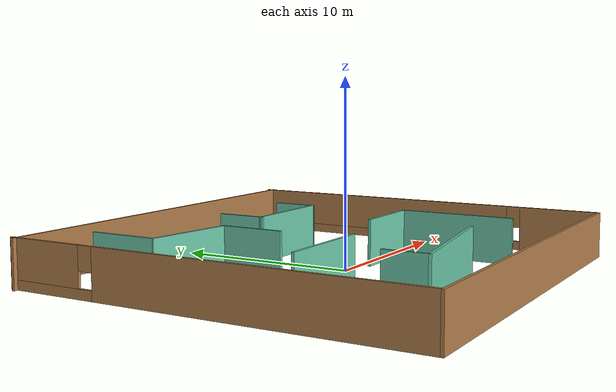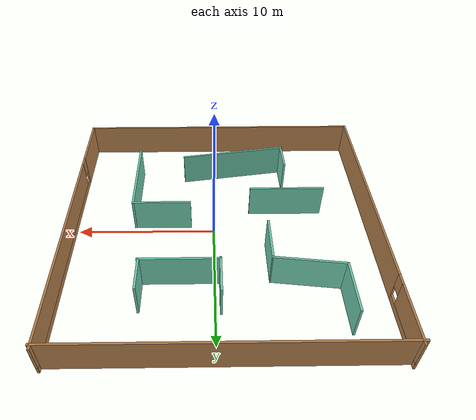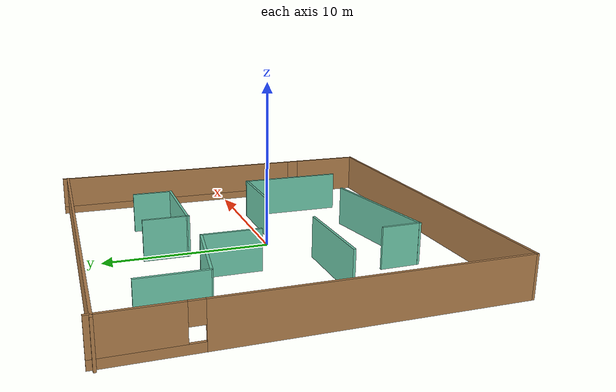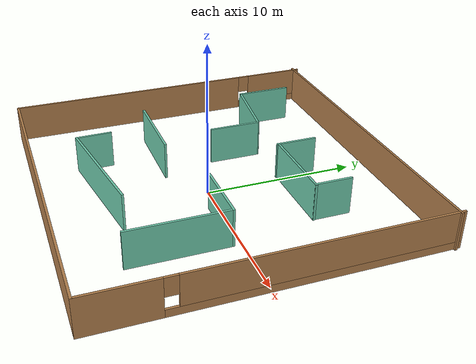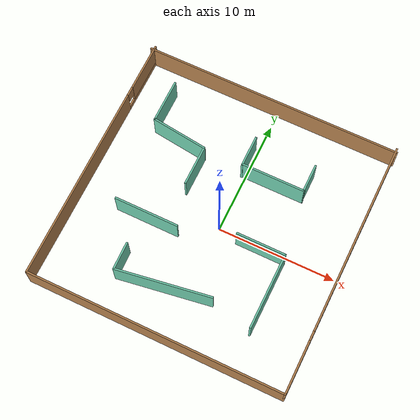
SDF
<?xml version='1.0'?>
<sdf version='1.7'>
  <model name='building_final'>
    <pose>-0.645974 0.589478 0 0 -0 0</pose>
    <link name='Wall_33'>
      <collision name='Wall_33_Collision'>
        <geometry>
          <box>
            <size>21.908 0.15 2.5</size>
          </box>
        </geometry>
        <pose>0 0 1.25 0 -0 0</pose>
      </collision>
      <visual name='Wall_33_Visual'>
        <pose>0 0 1.25 0 -0 0</pose>
        <geometry>
          <box>
            <size>21.908 0.15 2.5</size>
          </box>
        </geometry>
        <material>
          <script>
            <uri>file://media/materials/scripts/gazebo.material</uri>
            <name>Gazebo/Wood</name>
          </script>
          <ambient>1 1 1 1</ambient>
        </material>
        <meta>
          <layer>0</layer>
        </meta>
      </visual>
      <pose>0.052152 -10.925 0 0 -0 0</pose>
    </link>
    <link name='Wall_34'>
      <pose>10.9312 -0 0 0 -0 1.5708</pose>
      <visual name='Wall_34_Visual_0'>
        <pose>-8.72292 0 1.25 0 -0 0</pose>
        <geometry>
          <box>
            <size>4.55416 0.15 2.5</size>
          </box>
        </geometry>
        <material>
          <script>
            <uri>file://media/materials/scripts/gazebo.material</uri>
            <name>Gazebo/Wood</name>
          </script>
          <ambient>1 1 1 1</ambient>
        </material>
        <meta>
          <layer>0</layer>
        </meta>
      </visual>
      <collision name='Wall_34_Collision_0'>
        <geometry>
          <box>
            <size>4.55416 0.15 2.5</size>
          </box>
        </geometry>
        <pose>-8.72292 0 1.25 0 -0 0</pose>
      </collision>
      <visual name='Wall_34_Visual_1'>
        <pose>2.27708 0 0.25 0 -0 0</pose>
        <geometry>
          <box>
            <size>17.4458 0.15 0.5</size>
          </box>
        </geometry>
        <material>
          <script>
            <uri>file://media/materials/scripts/gazebo.material</uri>
            <name>Gazebo/Wood</name>
          </script>
          <ambient>1 1 1 1</ambient>
        </material>
        <meta>
          <layer>0</layer>
        </meta>
      </visual>
      <collision name='Wall_34_Collision_1'>
        <geometry>
          <box>
            <size>17.4458 0.15 0.5</size>
          </box>
        </geometry>
        <pose>2.27708 0 0.25 0 -0 0</pose>
      </collision>
      <visual name='Wall_34_Visual_2'>
        <pose>2.67708 0 1.5 0 -0 0</pose>
        <geometry>
          <box>
            <size>16.6458 0.15 2</size>
          </box>
        </geometry>
        <material>
          <script>
            <uri>file://media/materials/scripts/gazebo.material</uri>
            <name>Gazebo/Wood</name>
          </script>
          <ambient>1 1 1 1</ambient>
        </material>
        <meta>
          <layer>0</layer>
        </meta>
      </visual>
      <collision name='Wall_34_Collision_2'>
        <geometry>
          <box>
            <size>16.6458 0.15 2</size>
          </box>
        </geometry>
        <pose>2.67708 0 1.5 0 -0 0</pose>
      </collision>
      <visual name='Wall_34_Visual_3'>
        <pose>-6.04584 0 1.9 0 -0 0</pose>
        <geometry>
          <box>
            <size>0.8 0.15 1.2</size>
          </box>
        </geometry>
        <material>
          <script>
            <uri>file://media/materials/scripts/gazebo.material</uri>
            <name>Gazebo/Wood</name>
          </script>
          <ambient>1 1 1 1</ambient>
        </material>
        <meta>
          <layer>0</layer>
        </meta>
      </visual>
      <collision name='Wall_34_Collision_3'>
        <geometry>
          <box>
            <size>0.8 0.15 1.2</size>
          </box>
        </geometry>
        <pose>-6.04584 0 1.9 0 -0 0</pose>
      </collision>
    </link>
    <link name='Wall_36'>
      <pose>-10.8268 -0 0 0 -0 1.5708</pose>
      <visual name='Wall_36_Visual_0'>
        <pose>-2.54968 0 1.25 0 -0 0</pose>
        <geometry>
          <box>
            <size>16.9006 0.15 2.5</size>
          </box>
        </geometry>
        <material>
          <script>
            <uri>file://media/materials/scripts/gazebo.material</uri>
            <name>Gazebo/Wood</name>
          </script>
          <ambient>1 1 1 1</ambient>
        </material>
        <meta>
          <layer>0</layer>
        </meta>
      </visual>
      <collision name='Wall_36_Collision_0'>
        <geometry>
          <box>
            <size>16.9006 0.15 2.5</size>
          </box>
        </geometry>
        <pose>-2.54968 0 1.25 0 -0 0</pose>
      </collision>
      <visual name='Wall_36_Visual_1'>
        <pose>8.45032 0 0.25 0 -0 0</pose>
        <geometry>
          <box>
            <size>5.09937 0.15 0.5</size>
          </box>
        </geometry>
        <material>
          <script>
            <uri>file://media/materials/scripts/gazebo.material</uri>
            <name>Gazebo/Wood</name>
          </script>
          <ambient>1 1 1 1</ambient>
        </material>
        <meta>
          <layer>0</layer>
        </meta>
      </visual>
      <collision name='Wall_36_Collision_1'>
        <geometry>
          <box>
            <size>5.09937 0.15 0.5</size>
          </box>
        </geometry>
        <pose>8.45032 0 0.25 0 -0 0</pose>
      </collision>
      <visual name='Wall_36_Visual_2'>
        <pose>8.85032 0 1.5 0 -0 0</pose>
        <geometry>
          <box>
            <size>4.29937 0.15 2</size>
          </box>
        </geometry>
        <material>
          <script>
            <uri>file://media/materials/scripts/gazebo.material</uri>
            <name>Gazebo/Wood</name>
          </script>
          <ambient>1 1 1 1</ambient>
        </material>
        <meta>
          <layer>0</layer>
        </meta>
      </visual>
      <collision name='Wall_36_Collision_2'>
        <geometry>
          <box>
            <size>4.29937 0.15 2</size>
          </box>
        </geometry>
        <pose>8.85032 0 1.5 0 -0 0</pose>
      </collision>
      <visual name='Wall_36_Visual_3'>
        <pose>6.30063 0 1.9 0 -0 0</pose>
        <geometry>
          <box>
            <size>0.8 0.15 1.2</size>
          </box>
        </geometry>
        <material>
          <script>
            <uri>file://media/materials/scripts/gazebo.material</uri>
            <name>Gazebo/Wood</name>
          </script>
          <ambient>1 1 1 1</ambient>
        </material>
        <meta>
          <layer>0</layer>
        </meta>
      </visual>
      <collision name='Wall_36_Collision_3'>
        <geometry>
          <box>
            <size>0.8 0.15 1.2</size>
          </box>
        </geometry>
        <pose>6.30063 0 1.9 0 -0 0</pose>
      </collision>
    </link>
    <link name='Wall_38'>
      <collision name='Wall_38_Collision'>
        <geometry>
          <box>
            <size>22.25 0.15 2.5</size>
          </box>
        </geometry>
        <pose>0 0 1.25 0 -0 0</pose>
      </collision>
      <visual name='Wall_38_Visual'>
        <pose>0 0 1.25 0 -0 0</pose>
        <geometry>
          <box>
            <size>22.25 0.15 2.5</size>
          </box>
        </geometry>
        <material>
          <script>
            <uri>file://media/materials/scripts/gazebo.material</uri>
            <name>Gazebo/Wood</name>
          </script>
          <ambient>1 1 1 1</ambient>
        </material>
        <meta>
          <layer>0</layer>
        </meta>
      </visual>
      <pose>-0 10.6551 0 0 -0 0</pose>
    </link>
    <link name='Wall_40'>
      <collision name='Wall_40_Collision'>
        <geometry>
          <box>
            <size>6.5 0.15 2.5</size>
          </box>
        </geometry>
        <pose>0 0 1.25 0 -0 0</pose>
      </collision>
      <visual name='Wall_40_Visual'>
        <pose>0 0 1.25 0 -0 0</pose>
        <geometry>
          <box>
            <size>6.5 0.15 2.5</size>
          </box>
        </geometry>
        <material>
          <script>
            <uri>file://media/materials/scripts/gazebo.material</uri>
            <name>Gazebo/Grey</name>
          </script>
          <ambient>0.435294 0.796078 0.67451 1</ambient>
        </material>
        <meta>
          <layer>0</layer>
        </meta>
      </visual>
      <pose>6.51008 -4.27242 0 0 -0 1.5708</pose>
    </link>
    <link name='Wall_41'>
      <collision name='Wall_41_Collision'>
        <geometry>
          <box>
            <size>4.25 0.15 2.5</size>
          </box>
        </geometry>
        <pose>0 0 1.25 0 -0 0</pose>
      </collision>
      <visual name='Wall_41_Visual'>
        <pose>0 0 1.25 0 -0 0</pose>
        <geometry>
          <box>
            <size>4.25 0.15 2.5</size>
          </box>
        </geometry>
        <material>
          <script>
            <uri>file://media/materials/scripts/gazebo.material</uri>
            <name>Gazebo/Grey</name>
          </script>
          <ambient>0.435294 0.796078 0.67451 1</ambient>
        </material>
        <meta>
          <layer>0</layer>
        </meta>
      </visual>
      <pose>4.46008 -1.09742 0 0 -0 3.14159</pose>
    </link>
    <link name='Wall_43'>
      <collision name='Wall_43_Collision'>
        <geometry>
          <box>
            <size>3.75 0.15 2.5</size>
          </box>
        </geometry>
        <pose>0 0 1.25 0 -0 0</pose>
      </collision>
      <visual name='Wall_43_Visual'>
        <pose>0 0 1.25 0 -0 0</pose>
        <geometry>
          <box>
            <size>3.75 0.15 2.5</size>
          </box>
        </geometry>
        <material>
          <script>
            <uri>file://media/materials/scripts/gazebo.material</uri>
            <name>Gazebo/Grey</name>
          </script>
          <ambient>0.435294 0.796078 0.67451 1</ambient>
        </material>
        <meta>
          <layer>0</layer>
        </meta>
      </visual>
      <pose>-7.83083 6.78038 0 0 -0 -1.5708</pose>
    </link>
    <link name='Wall_44'>
      <collision name='Wall_44_Collision'>
        <geometry>
          <box>
            <size>4.91702 0.15 2.5</size>
          </box>
        </geometry>
        <pose>0 0 1.25 0 -0 0</pose>
      </collision>
      <visual name='Wall_44_Visual'>
        <pose>0 0 1.25 0 -0 0</pose>
        <geometry>
          <box>
            <size>4.91702 0.15 2.5</size>
          </box>
        </geometry>
        <material>
          <script>
            <uri>file://media/materials/scripts/gazebo.material</uri>
            <name>Gazebo/Grey</name>
          </script>
          <ambient>0.435294 0.796078 0.67451 1</ambient>
        </material>
        <meta>
          <layer>0</layer>
        </meta>
      </visual>
      <pose>-5.46551 4.64119 0 0 -0 -0.123647</pose>
    </link>
    <link name='Wall_45'>
      <collision name='Wall_45_Collision'>
        <geometry>
          <box>
            <size>3.5 0.15 2.5</size>
          </box>
        </geometry>
        <pose>0 0 1.25 0 -0 0</pose>
      </collision>
      <visual name='Wall_45_Visual'>
        <pose>0 0 1.25 0 -0 0</pose>
        <geometry>
          <box>
            <size>3.5 0.15 2.5</size>
          </box>
        </geometry>
        <material>
          <script>
            <uri>file://media/materials/scripts/gazebo.material</uri>
            <name>Gazebo/Grey</name>
          </script>
          <ambient>0.435294 0.796078 0.67451 1</ambient>
        </material>
        <meta>
          <layer>0</layer>
        </meta>
      </visual>
      <pose>-3.1002 2.67223 0 0 -0 -1.5708</pose>
    </link>
    <link name='Wall_47'>
      <collision name='Wall_47_Collision'>
        <geometry>
          <box>
            <size>5.5 0.15 2.5</size>
          </box>
        </geometry>
        <pose>0 0 1.25 0 -0 0</pose>
      </collision>
      <visual name='Wall_47_Visual'>
        <pose>0 0 1.25 0 -0 0</pose>
        <geometry>
          <box>
            <size>5.5 0.15 2.5</size>
          </box>
        </geometry>
        <material>
          <script>
            <uri>file://media/materials/scripts/gazebo.material</uri>
            <name>Gazebo/Grey</name>
          </script>
          <ambient>0.435294 0.796078 0.67451 1</ambient>
        </material>
        <meta>
          <layer>0</layer>
        </meta>
      </visual>
      <pose>-4.80533 -2.55858 0 0 -0 0</pose>
    </link>
    <link name='Wall_49'>
      <collision name='Wall_49_Collision'>
        <geometry>
          <box>
            <size>2.75 0.15 2.5</size>
          </box>
        </geometry>
        <pose>0 0 1.25 0 -0 0</pose>
      </collision>
      <visual name='Wall_49_Visual'>
        <pose>0 0 1.25 0 -0 0</pose>
        <geometry>
          <box>
            <size>2.75 0.15 2.5</size>
          </box>
        </geometry>
        <material>
          <script>
            <uri>file://media/materials/scripts/gazebo.material</uri>
            <name>Gazebo/Grey</name>
          </script>
          <ambient>0.435294 0.796078 0.67451 1</ambient>
        </material>
        <meta>
          <layer>0</layer>
        </meta>
      </visual>
      <pose>0.287093 5.64522 0 0 -0 -1.5708</pose>
    </link>
    <link name='Wall_50'>
      <collision name='Wall_50_Collision'>
        <geometry>
          <box>
            <size>5.52488 0.15 2.5</size>
          </box>
        </geometry>
        <pose>0 0 1.25 0 -0 0</pose>
      </collision>
      <visual name='Wall_50_Visual'>
        <pose>0 0 1.25 0 -0 0</pose>
        <geometry>
          <box>
            <size>5.52488 0.15 2.5</size>
          </box>
        </geometry>
        <material>
          <script>
            <uri>file://media/materials/scripts/gazebo.material</uri>
            <name>Gazebo/Grey</name>
          </script>
          <ambient>0.435294 0.796078 0.67451 1</ambient>
        </material>
        <meta>
          <layer>0</layer>
        </meta>
      </visual>
      <pose>2.97453 4.40063 0 0 -0 0.001262</pose>
    </link>
    <link name='Wall_51'>
      <collision name='Wall_51_Collision'>
        <geometry>
          <box>
            <size>2.5 0.15 2.5</size>
          </box>
        </geometry>
        <pose>0 0 1.25 0 -0 0</pose>
      </collision>
      <visual name='Wall_51_Visual'>
        <pose>0 0 1.25 0 -0 0</pose>
        <geometry>
          <box>
            <size>2.5 0.15 2.5</size>
          </box>
        </geometry>
        <material>
          <script>
            <uri>file://media/materials/scripts/gazebo.material</uri>
            <name>Gazebo/Grey</name>
          </script>
          <ambient>0.435294 0.796078 0.67451 1</ambient>
        </material>
        <meta>
          <layer>0</layer>
        </meta>
      </visual>
      <pose>5.61674 5.57902 0 0 -0 1.5708</pose>
    </link>
    <link name='Wall_53'>
      <collision name='Wall_53_Collision'>
        <geometry>
          <box>
            <size>2.32462 0.15 2.5</size>
          </box>
        </geometry>
        <pose>0 0 1.25 0 -0 0</pose>
      </collision>
      <visual name='Wall_53_Visual'>
        <pose>0 0 1.25 0 -0 0</pose>
        <geometry>
          <box>
            <size>2.32462 0.15 2.5</size>
          </box>
        </geometry>
        <material>
          <script>
            <uri>file://media/materials/scripts/gazebo.material</uri>
            <name>Gazebo/Grey</name>
          </script>
          <ambient>0.435294 0.796078 0.67451 1</ambient>
        </material>
        <meta>
          <layer>0</layer>
        </meta>
      </visual>
      <pose>-4.93415 -6.63504 0 0 -0 -1.55</pose>
    </link>
    <link name='Wall_54'>
      <collision name='Wall_54_Collision'>
        <geometry>
          <box>
            <size>8.07081 0.15 2.5</size>
          </box>
        </geometry>
        <pose>0 0 1.25 0 -0 0</pose>
      </collision>
      <visual name='Wall_54_Visual'>
        <pose>0 0 1.25 0 -0 0</pose>
        <geometry>
          <box>
            <size>8.07081 0.15 2.5</size>
          </box>
        </geometry>
        <material>
          <script>
            <uri>file://media/materials/scripts/gazebo.material</uri>
            <name>Gazebo/Grey</name>
          </script>
          <ambient>0.435294 0.796078 0.67451 1</ambient>
        </material>
        <meta>
          <layer>0</layer>
        </meta>
      </visual>
      <pose>-0.998478 -7.20202 0 0 -0 0.154778</pose>
    </link>
    <static>1</static>
  </model>
</sdf>
